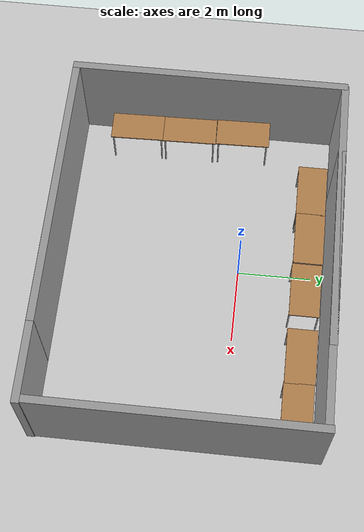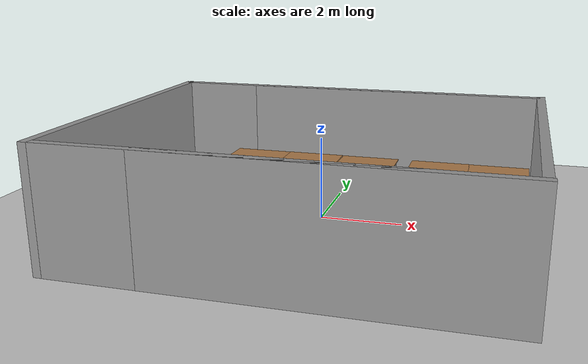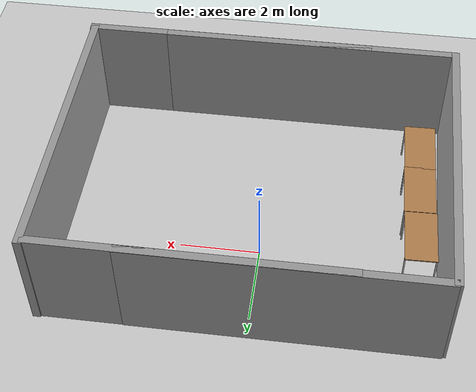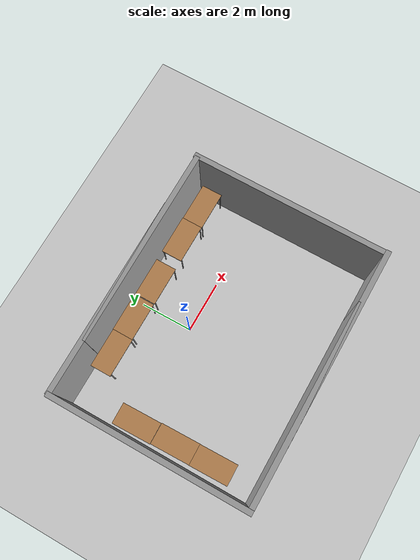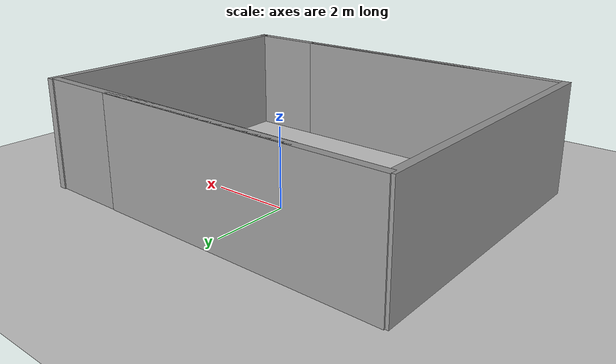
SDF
<sdf version="1.7">
 <world name="default">
  <light name="sun" type="directional">
   <pose>0 0 10 0 -0 0</pose>
   <diffuse>0.8 0.8 0.8 1</diffuse>
   <specular>0.2 0.2 0.2 1</specular>
   <attenuation>
    <range>1000</range>
    <constant>0.9</constant>
    <linear>0.01</linear>
    <quadratic>0.001</quadratic>
   </attenuation>
   <direction>-0.5 0.1 -0.9</direction>
   <spot><inner_angle>0</inner_angle><outer_angle>0</outer_angle><falloff>0</falloff></spot>
  </light>
  <model name="ground_plane">
   <static>1</static>
   <link name="link">
    <collision name="collision">
     <geometry><plane><normal>0 0 1</normal><size>100 100</size></plane></geometry>
     <surface><friction><ode><mu>100</mu><mu2>50</mu2></ode></friction></surface>
    </collision>
    <visual name="visual">
     <cast_shadows>0</cast_shadows>
     <geometry><plane><normal>0 0 1</normal><size>100 100</size></plane></geometry>
     <material>
      <script><uri>file://media/materials/scripts/gazebo.material</uri><name>Gazebo/Grey</name></script>
     </material>
    </visual>
   </link>
  </model>
  <gravity>0 0 -9.8</gravity>
  <magnetic_field>6e-06 2.3e-05 -4.2e-05</magnetic_field>
  <atmosphere type="adiabatic"/>
  <physics type="ode">
   <max_step_size>0.001</max_step_size>
   <real_time_factor>1</real_time_factor>
   <real_time_update_rate>1000</real_time_update_rate>
  </physics>
  <scene><ambient>0.4 0.4 0.4 1</ambient><background>0.7 0.7 0.7 1</background><shadows>1</shadows></scene>
  <spherical_coordinates>
   <surface_model>EARTH_WGS84</surface_model>
   <latitude_deg>0</latitude_deg>
   <longitude_deg>0</longitude_deg>
   <elevation>0</elevation>
   <heading_deg>0</heading_deg>
  </spherical_coordinates>
  <model name="grey_wall">
   <static>1</static>
   <link name="link">
    <pose>0 0 1.4 0 -0 0</pose>
    <collision name="collision"><geometry><box><size>7.5 0.2 2.8</size></box></geometry></collision>
    <visual name="visual">
     <cast_shadows>0</cast_shadows>
     <geometry><box><size>7.5 0.2 2.8</size></box></geometry>
     <material>
      <script>
       <uri>model://grey_wall/materials/scripts</uri>
       <uri>model://grey_wall/materials/textures</uri>
       <name>vrc/grey_wall</name>
      </script>
     </material>
    </visual>
   </link>
   <pose>-0.803666 2.43468 0 0 -0 0</pose>
  </model>
  <model name="grey_wall_clone">
   <static>1</static>
   <link name="link">
    <pose>0 0 1.4 0 -0 0</pose>
    <collision name="collision"><geometry><box><size>7.5 0.2 2.8</size></box></geometry></collision>
    <visual name="visual">
     <cast_shadows>0</cast_shadows>
     <geometry><box><size>7.5 0.2 2.8</size></box></geometry>
     <material>
      <script>
       <uri>model://grey_wall/materials/scripts</uri>
       <uri>model://grey_wall/materials/textures</uri>
       <name>vrc/grey_wall</name>
      </script>
     </material>
    </visual>
   </link>
   <pose>1.25591 2.42457 0 0 -0 0</pose>
  </model>
  <model name="grey_wall_clone_0">
   <static>1</static>
   <link name="link">
    <pose>0 0 1.4 0 -0 0</pose>
    <collision name="collision"><geometry><box><size>7.5 0.2 2.8</size></box></geometry></collision>
    <visual name="visual">
     <cast_shadows>0</cast_shadows>
     <geometry><box><size>7.5 0.2 2.8</size></box></geometry>
     <material>
      <script>
       <uri>model://grey_wall/materials/scripts</uri>
       <uri>model://grey_wall/materials/textures</uri>
       <name>vrc/grey_wall</name>
      </script>
     </material>
    </visual>
   </link>
   <pose>-0.679019 -4.89916 0 0 -0 0</pose>
  </model>
  <model name="grey_wall_clone_1">
   <static>1</static>
   <link name="link">
    <pose>0 0 1.4 0 -0 0</pose>
    <collision name="collision"><geometry><box><size>7.5 0.2 2.8</size></box></geometry></collision>
    <visual name="visual">
     <cast_shadows>0</cast_shadows>
     <geometry><box><size>7.5 0.2 2.8</size></box></geometry>
     <material>
      <script>
       <uri>model://grey_wall/materials/scripts</uri>
       <uri>model://grey_wall/materials/textures</uri>
       <name>vrc/grey_wall</name>
      </script>
     </material>
    </visual>
   </link>
   <pose>1.39869 -4.90164 0 0 -0 0</pose>
  </model>
  <model name="grey_wall_clone_1_clone">
   <static>1</static>
   <link name="link">
    <pose>0 0 1.4 0 -0 0</pose>
    <collision name="collision"><geometry><box><size>7.5 0.2 2.8</size></box></geometry></collision>
    <visual name="visual">
     <cast_shadows>0</cast_shadows>
     <geometry><box><size>7.5 0.2 2.8</size></box></geometry>
     <material>
      <script>
       <uri>model://grey_wall/materials/scripts</uri>
       <uri>model://grey_wall/materials/textures</uri>
       <name>vrc/grey_wall</name>
      </script>
     </material>
    </visual>
   </link>
   <pose>-4.52506 -1.24738 0 0 0 -1.57</pose>
  </model>
  <model name="grey_wall_clone_1_clone_clone">
   <static>1</static>
   <link name="link">
    <pose>0 0 1.4 0 -0 0</pose>
    <collision name="collision"><geometry><box><size>7.5 0.2 2.8</size></box></geometry></collision>
    <visual name="visual">
     <cast_shadows>0</cast_shadows>
     <geometry><box><size>7.5 0.2 2.8</size></box></geometry>
     <material>
      <script>
       <uri>model://grey_wall/materials/scripts</uri>
       <uri>model://grey_wall/materials/textures</uri>
       <name>vrc/grey_wall</name>
      </script>
     </material>
    </visual>
   </link>
   <pose>5.02252 -1.19384 0 0 0 -1.57</pose>
  </model>
  <model name="table">
   <static>1</static>
   <link name="link">
    <collision name="surface">
     <pose>0 0 1 0 -0 0</pose>
     <geometry><box><size>1.5 0.8 0.03</size></box></geometry>
     <surface><friction><ode><mu>0.6</mu><mu2>0.6</mu2></ode></friction></surface>
    </collision>
    <visual name="visual1">
     <pose>0 0 1 0 -0 0</pose>
     <geometry><box><size>1.5 0.8 0.03</size></box></geometry>
     <material>
      <script><uri>file://media/materials/scripts/gazebo.material</uri><name>Gazebo/Wood</name></script>
     </material>
    </visual>
    <collision name="front_left_leg">
     <pose>0.68 0.38 0.5 0 -0 0</pose>
     <geometry><cylinder><radius>0.02</radius><length>1</length></cylinder></geometry>
    </collision>
    <visual name="front_left_leg">
     <pose>0.68 0.38 0.5 0 -0 0</pose>
     <geometry><cylinder><radius>0.02</radius><length>1</length></cylinder></geometry>
     <material>
      <script><uri>file://media/materials/scripts/gazebo.material</uri><name>Gazebo/Grey</name></script>
     </material>
    </visual>
    <collision name="front_right_leg">
     <pose>0.68 -0.38 0.5 0 -0 0</pose>
     <geometry><cylinder><radius>0.02</radius><length>1</length></cylinder></geometry>
    </collision>
    <visual name="front_right_leg">
     <pose>0.68 -0.38 0.5 0 -0 0</pose>
     <geometry><cylinder><radius>0.02</radius><length>1</length></cylinder></geometry>
     <material>
      <script><uri>file://media/materials/scripts/gazebo.material</uri><name>Gazebo/Grey</name></script>
     </material>
    </visual>
    <collision name="back_right_leg">
     <pose>-0.68 -0.38 0.5 0 -0 0</pose>
     <geometry><cylinder><radius>0.02</radius><length>1</length></cylinder></geometry>
    </collision>
    <visual name="back_right_leg">
     <pose>-0.68 -0.38 0.5 0 -0 0</pose>
     <geometry><cylinder><radius>0.02</radius><length>1</length></cylinder></geometry>
     <material>
      <script><uri>file://media/materials/scripts/gazebo.material</uri><name>Gazebo/Grey</name></script>
     </material>
    </visual>
    <collision name="back_left_leg">
     <pose>-0.68 0.38 0.5 0 -0 0</pose>
     <geometry><cylinder><radius>0.02</radius><length>1</length></cylinder></geometry>
    </collision>
    <visual name="back_left_leg">
     <pose>-0.68 0.38 0.5 0 -0 0</pose>
     <geometry><cylinder><radius>0.02</radius><length>1</length></cylinder></geometry>
     <material>
      <script><uri>file://media/materials/scripts/gazebo.material</uri><name>Gazebo/Grey</name></script>
     </material>
    </visual>
   </link>
   <pose>4.12932 1.79946 0 0 -0 0</pose>
  </model>
  <model name="table_clone">
   <static>1</static>
   <link name="link">
    <collision name="surface">
     <pose>0 0 1 0 -0 0</pose>
     <geometry><box><size>1.5 0.8 0.03</size></box></geometry>
     <surface><friction><ode><mu>0.6</mu><mu2>0.6</mu2></ode></friction></surface>
    </collision>
    <visual name="visual1">
     <pose>0 0 1 0 -0 0</pose>
     <geometry><box><size>1.5 0.8 0.03</size></box></geometry>
     <material>
      <script><uri>file://media/materials/scripts/gazebo.material</uri><name>Gazebo/Wood</name></script>
     </material>
    </visual>
    <collision name="front_left_leg">
     <pose>0.68 0.38 0.5 0 -0 0</pose>
     <geometry><cylinder><radius>0.02</radius><length>1</length></cylinder></geometry>
    </collision>
    <visual name="front_left_leg">
     <pose>0.68 0.38 0.5 0 -0 0</pose>
     <geometry><cylinder><radius>0.02</radius><length>1</length></cylinder></geometry>
     <material>
      <script><uri>file://media/materials/scripts/gazebo.material</uri><name>Gazebo/Grey</name></script>
     </material>
    </visual>
    <collision name="front_right_leg">
     <pose>0.68 -0.38 0.5 0 -0 0</pose>
     <geometry><cylinder><radius>0.02</radius><length>1</length></cylinder></geometry>
    </collision>
    <visual name="front_right_leg">
     <pose>0.68 -0.38 0.5 0 -0 0</pose>
     <geometry><cylinder><radius>0.02</radius><length>1</length></cylinder></geometry>
     <material>
      <script><uri>file://media/materials/scripts/gazebo.material</uri><name>Gazebo/Grey</name></script>
     </material>
    </visual>
    <collision name="back_right_leg">
     <pose>-0.68 -0.38 0.5 0 -0 0</pose>
     <geometry><cylinder><radius>0.02</radius><length>1</length></cylinder></geometry>
    </collision>
    <visual name="back_right_leg">
     <pose>-0.68 -0.38 0.5 0 -0 0</pose>
     <geometry><cylinder><radius>0.02</radius><length>1</length></cylinder></geometry>
     <material>
      <script><uri>file://media/materials/scripts/gazebo.material</uri><name>Gazebo/Grey</name></script>
     </material>
    </visual>
    <collision name="back_left_leg">
     <pose>-0.68 0.38 0.5 0 -0 0</pose>
     <geometry><cylinder><radius>0.02</radius><length>1</length></cylinder></geometry>
    </collision>
    <visual name="back_left_leg">
     <pose>-0.68 0.38 0.5 0 -0 0</pose>
     <geometry><cylinder><radius>0.02</radius><length>1</length></cylinder></geometry>
     <material>
      <script><uri>file://media/materials/scripts/gazebo.material</uri><name>Gazebo/Grey</name></script>
     </material>
    </visual>
   </link>
   <pose>2.645 1.81408 0 0 -0 0</pose>
  </model>
  <model name="table_clone_0">
   <static>1</static>
   <link name="link">
    <collision name="surface">
     <pose>0 0 1 0 -0 0</pose>
     <geometry><box><size>1.5 0.8 0.03</size></box></geometry>
     <surface><friction><ode><mu>0.6</mu><mu2>0.6</mu2></ode></friction></surface>
    </collision>
    <visual name="visual1">
     <pose>0 0 1 0 -0 0</pose>
     <geometry><box><size>1.5 0.8 0.03</size></box></geometry>
     <material>
      <script><uri>file://media/materials/scripts/gazebo.material</uri><name>Gazebo/Wood</name></script>
     </material>
    </visual>
    <collision name="front_left_leg">
     <pose>0.68 0.38 0.5 0 -0 0</pose>
     <geometry><cylinder><radius>0.02</radius><length>1</length></cylinder></geometry>
    </collision>
    <visual name="front_left_leg">
     <pose>0.68 0.38 0.5 0 -0 0</pose>
     <geometry><cylinder><radius>0.02</radius><length>1</length></cylinder></geometry>
     <material>
      <script><uri>file://media/materials/scripts/gazebo.material</uri><name>Gazebo/Grey</name></script>
     </material>
    </visual>
    <collision name="front_right_leg">
     <pose>0.68 -0.38 0.5 0 -0 0</pose>
     <geometry><cylinder><radius>0.02</radius><length>1</length></cylinder></geometry>
    </collision>
    <visual name="front_right_leg">
     <pose>0.68 -0.38 0.5 0 -0 0</pose>
     <geometry><cylinder><radius>0.02</radius><length>1</length></cylinder></geometry>
     <material>
      <script><uri>file://media/materials/scripts/gazebo.material</uri><name>Gazebo/Grey</name></script>
     </material>
    </visual>
    <collision name="back_right_leg">
     <pose>-0.68 -0.38 0.5 0 -0 0</pose>
     <geometry><cylinder><radius>0.02</radius><length>1</length></cylinder></geometry>
    </collision>
    <visual name="back_right_leg">
     <pose>-0.68 -0.38 0.5 0 -0 0</pose>
     <geometry><cylinder><radius>0.02</radius><length>1</length></cylinder></geometry>
     <material>
      <script><uri>file://media/materials/scripts/gazebo.material</uri><name>Gazebo/Grey</name></script>
     </material>
    </visual>
    <collision name="back_left_leg">
     <pose>-0.68 0.38 0.5 0 -0 0</pose>
     <geometry><cylinder><radius>0.02</radius><length>1</length></cylinder></geometry>
    </collision>
    <visual name="back_left_leg">
     <pose>-0.68 0.38 0.5 0 -0 0</pose>
     <geometry><cylinder><radius>0.02</radius><length>1</length></cylinder></geometry>
     <material>
      <script><uri>file://media/materials/scripts/gazebo.material</uri><name>Gazebo/Grey</name></script>
     </material>
    </visual>
   </link>
   <pose>0.773636 1.8212 0 0 -0 0</pose>
  </model>
  <model name="table_clone_1">
   <static>1</static>
   <link name="link">
    <collision name="surface">
     <pose>0 0 1 0 -0 0</pose>
     <geometry><box><size>1.5 0.8 0.03</size></box></geometry>
     <surface><friction><ode><mu>0.6</mu><mu2>0.6</mu2></ode></friction></surface>
    </collision>
    <visual name="visual1">
     <pose>0 0 1 0 -0 0</pose>
     <geometry><box><size>1.5 0.8 0.03</size></box></geometry>
     <material>
      <script><uri>file://media/materials/scripts/gazebo.material</uri><name>Gazebo/Wood</name></script>
     </material>
    </visual>
    <collision name="front_left_leg">
     <pose>0.68 0.38 0.5 0 -0 0</pose>
     <geometry><cylinder><radius>0.02</radius><length>1</length></cylinder></geometry>
    </collision>
    <visual name="front_left_leg">
     <pose>0.68 0.38 0.5 0 -0 0</pose>
     <geometry><cylinder><radius>0.02</radius><length>1</length></cylinder></geometry>
     <material>
      <script><uri>file://media/materials/scripts/gazebo.material</uri><name>Gazebo/Grey</name></script>
     </material>
    </visual>
    <collision name="front_right_leg">
     <pose>0.68 -0.38 0.5 0 -0 0</pose>
     <geometry><cylinder><radius>0.02</radius><length>1</length></cylinder></geometry>
    </collision>
    <visual name="front_right_leg">
     <pose>0.68 -0.38 0.5 0 -0 0</pose>
     <geometry><cylinder><radius>0.02</radius><length>1</length></cylinder></geometry>
     <material>
      <script><uri>file://media/materials/scripts/gazebo.material</uri><name>Gazebo/Grey</name></script>
     </material>
    </visual>
    <collision name="back_right_leg">
     <pose>-0.68 -0.38 0.5 0 -0 0</pose>
     <geometry><cylinder><radius>0.02</radius><length>1</length></cylinder></geometry>
    </collision>
    <visual name="back_right_leg">
     <pose>-0.68 -0.38 0.5 0 -0 0</pose>
     <geometry><cylinder><radius>0.02</radius><length>1</length></cylinder></geometry>
     <material>
      <script><uri>file://media/materials/scripts/gazebo.material</uri><name>Gazebo/Grey</name></script>
     </material>
    </visual>
    <collision name="back_left_leg">
     <pose>-0.68 0.38 0.5 0 -0 0</pose>
     <geometry><cylinder><radius>0.02</radius><length>1</length></cylinder></geometry>
    </collision>
    <visual name="back_left_leg">
     <pose>-0.68 0.38 0.5 0 -0 0</pose>
     <geometry><cylinder><radius>0.02</radius><length>1</length></cylinder></geometry>
     <material>
      <script><uri>file://media/materials/scripts/gazebo.material</uri><name>Gazebo/Grey</name></script>
     </material>
    </visual>
   </link>
   <pose>-0.753682 1.83835 0 0 -0 0</pose>
  </model>
  <model name="table_clone_2">
   <static>1</static>
   <link name="link">
    <collision name="surface">
     <pose>0 0 1 0 -0 0</pose>
     <geometry><box><size>1.5 0.8 0.03</size></box></geometry>
     <surface><friction><ode><mu>0.6</mu><mu2>0.6</mu2></ode></friction></surface>
    </collision>
    <visual name="visual1">
     <pose>0 0 1 0 -0 0</pose>
     <geometry><box><size>1.5 0.8 0.03</size></box></geometry>
     <material>
      <script><uri>file://media/materials/scripts/gazebo.material</uri><name>Gazebo/Wood</name></script>
     </material>
    </visual>
    <collision name="front_left_leg">
     <pose>0.68 0.38 0.5 0 -0 0</pose>
     <geometry><cylinder><radius>0.02</radius><length>1</length></cylinder></geometry>
    </collision>
    <visual name="front_left_leg">
     <pose>0.68 0.38 0.5 0 -0 0</pose>
     <geometry><cylinder><radius>0.02</radius><length>1</length></cylinder></geometry>
     <material>
      <script><uri>file://media/materials/scripts/gazebo.material</uri><name>Gazebo/Grey</name></script>
     </material>
    </visual>
    <collision name="front_right_leg">
     <pose>0.68 -0.38 0.5 0 -0 0</pose>
     <geometry><cylinder><radius>0.02</radius><length>1</length></cylinder></geometry>
    </collision>
    <visual name="front_right_leg">
     <pose>0.68 -0.38 0.5 0 -0 0</pose>
     <geometry><cylinder><radius>0.02</radius><length>1</length></cylinder></geometry>
     <material>
      <script><uri>file://media/materials/scripts/gazebo.material</uri><name>Gazebo/Grey</name></script>
     </material>
    </visual>
    <collision name="back_right_leg">
     <pose>-0.68 -0.38 0.5 0 -0 0</pose>
     <geometry><cylinder><radius>0.02</radius><length>1</length></cylinder></geometry>
    </collision>
    <visual name="back_right_leg">
     <pose>-0.68 -0.38 0.5 0 -0 0</pose>
     <geometry><cylinder><radius>0.02</radius><length>1</length></cylinder></geometry>
     <material>
      <script><uri>file://media/materials/scripts/gazebo.material</uri><name>Gazebo/Grey</name></script>
     </material>
    </visual>
    <collision name="back_left_leg">
     <pose>-0.68 0.38 0.5 0 -0 0</pose>
     <geometry><cylinder><radius>0.02</radius><length>1</length></cylinder></geometry>
    </collision>
    <visual name="back_left_leg">
     <pose>-0.68 0.38 0.5 0 -0 0</pose>
     <geometry><cylinder><radius>0.02</radius><length>1</length></cylinder></geometry>
     <material>
      <script><uri>file://media/materials/scripts/gazebo.material</uri><name>Gazebo/Grey</name></script>
     </material>
    </visual>
   </link>
   <pose>-2.23475 1.82905 0 0 -0 0</pose>
  </model>
  <model name="table_clone_3">
   <static>1</static>
   <link name="link">
    <collision name="surface">
     <pose>0 0 1 0 -0 0</pose>
     <geometry><box><size>1.5 0.8 0.03</size></box></geometry>
     <surface><friction><ode><mu>0.6</mu><mu2>0.6</mu2></ode></friction></surface>
    </collision>
    <visual name="visual1">
     <pose>0 0 1 0 -0 0</pose>
     <geometry><box><size>1.5 0.8 0.03</size></box></geometry>
     <material>
      <script><uri>file://media/materials/scripts/gazebo.material</uri><name>Gazebo/Wood</name></script>
     </material>
    </visual>
    <collision name="front_left_leg">
     <pose>0.68 0.38 0.5 0 -0 0</pose>
     <geometry><cylinder><radius>0.02</radius><length>1</length></cylinder></geometry>
    </collision>
    <visual name="front_left_leg">
     <pose>0.68 0.38 0.5 0 -0 0</pose>
     <geometry><cylinder><radius>0.02</radius><length>1</length></cylinder></geometry>
     <material>
      <script><uri>file://media/materials/scripts/gazebo.material</uri><name>Gazebo/Grey</name></script>
     </material>
    </visual>
    <collision name="front_right_leg">
     <pose>0.68 -0.38 0.5 0 -0 0</pose>
     <geometry><cylinder><radius>0.02</radius><length>1</length></cylinder></geometry>
    </collision>
    <visual name="front_right_leg">
     <pose>0.68 -0.38 0.5 0 -0 0</pose>
     <geometry><cylinder><radius>0.02</radius><length>1</length></cylinder></geometry>
     <material>
      <script><uri>file://media/materials/scripts/gazebo.material</uri><name>Gazebo/Grey</name></script>
     </material>
    </visual>
    <collision name="back_right_leg">
     <pose>-0.68 -0.38 0.5 0 -0 0</pose>
     <geometry><cylinder><radius>0.02</radius><length>1</length></cylinder></geometry>
    </collision>
    <visual name="back_right_leg">
     <pose>-0.68 -0.38 0.5 0 -0 0</pose>
     <geometry><cylinder><radius>0.02</radius><length>1</length></cylinder></geometry>
     <material>
      <script><uri>file://media/materials/scripts/gazebo.material</uri><name>Gazebo/Grey</name></script>
     </material>
    </visual>
    <collision name="back_left_leg">
     <pose>-0.68 0.38 0.5 0 -0 0</pose>
     <geometry><cylinder><radius>0.02</radius><length>1</length></cylinder></geometry>
    </collision>
    <visual name="back_left_leg">
     <pose>-0.68 0.38 0.5 0 -0 0</pose>
     <geometry><cylinder><radius>0.02</radius><length>1</length></cylinder></geometry>
     <material>
      <script><uri>file://media/materials/scripts/gazebo.material</uri><name>Gazebo/Grey</name></script>
     </material>
    </visual>
   </link>
   <pose>-3.91491 -0.212749 0 0 0 -1.54987</pose>
  </model>
  <model name="table_clone_3_clone">
   <static>1</static>
   <link name="link">
    <collision name="surface">
     <pose>0 0 1 0 -0 0</pose>
     <geometry><box><size>1.5 0.8 0.03</size></box></geometry>
     <surface><friction><ode><mu>0.6</mu><mu2>0.6</mu2></ode></friction></surface>
    </collision>
    <visual name="visual1">
     <pose>0 0 1 0 -0 0</pose>
     <geometry><box><size>1.5 0.8 0.03</size></box></geometry>
     <material>
      <script><uri>file://media/materials/scripts/gazebo.material</uri><name>Gazebo/Wood</name></script>
     </material>
    </visual>
    <collision name="front_left_leg">
     <pose>0.68 0.38 0.5 0 -0 0</pose>
     <geometry><cylinder><radius>0.02</radius><length>1</length></cylinder></geometry>
    </collision>
    <visual name="front_left_leg">
     <pose>0.68 0.38 0.5 0 -0 0</pose>
     <geometry><cylinder><radius>0.02</radius><length>1</length></cylinder></geometry>
     <material>
      <script><uri>file://media/materials/scripts/gazebo.material</uri><name>Gazebo/Grey</name></script>
     </material>
    </visual>
    <collision name="front_right_leg">
     <pose>0.68 -0.38 0.5 0 -0 0</pose>
     <geometry><cylinder><radius>0.02</radius><length>1</length></cylinder></geometry>
    </collision>
    <visual name="front_right_leg">
     <pose>0.68 -0.38 0.5 0 -0 0</pose>
     <geometry><cylinder><radius>0.02</radius><length>1</length></cylinder></geometry>
     <material>
      <script><uri>file://media/materials/scripts/gazebo.material</uri><name>Gazebo/Grey</name></script>
     </material>
    </visual>
    <collision name="back_right_leg">
     <pose>-0.68 -0.38 0.5 0 -0 0</pose>
     <geometry><cylinder><radius>0.02</radius><length>1</length></cylinder></geometry>
    </collision>
    <visual name="back_right_leg">
     <pose>-0.68 -0.38 0.5 0 -0 0</pose>
     <geometry><cylinder><radius>0.02</radius><length>1</length></cylinder></geometry>
     <material>
      <script><uri>file://media/materials/scripts/gazebo.material</uri><name>Gazebo/Grey</name></script>
     </material>
    </visual>
    <collision name="back_left_leg">
     <pose>-0.68 0.38 0.5 0 -0 0</pose>
     <geometry><cylinder><radius>0.02</radius><length>1</length></cylinder></geometry>
    </collision>
    <visual name="back_left_leg">
     <pose>-0.68 0.38 0.5 0 -0 0</pose>
     <geometry><cylinder><radius>0.02</radius><length>1</length></cylinder></geometry>
     <material>
      <script><uri>file://media/materials/scripts/gazebo.material</uri><name>Gazebo/Grey</name></script>
     </material>
    </visual>
   </link>
   <pose>-3.86706 -1.72113 0 0 0 -1.54987</pose>
  </model>
  <model name="table_clone_3_clone_0">
   <static>1</static>
   <link name="link">
    <collision name="surface">
     <pose>0 0 1 0 -0 0</pose>
     <geometry><box><size>1.5 0.8 0.03</size></box></geometry>
     <surface><friction><ode><mu>0.6</mu><mu2>0.6</mu2></ode></friction></surface>
    </collision>
    <visual name="visual1">
     <pose>0 0 1 0 -0 0</pose>
     <geometry><box><size>1.5 0.8 0.03</size></box></geometry>
     <material>
      <script><uri>file://media/materials/scripts/gazebo.material</uri><name>Gazebo/Wood</name></script>
     </material>
    </visual>
    <collision name="front_left_leg">
     <pose>0.68 0.38 0.5 0 -0 0</pose>
     <geometry><cylinder><radius>0.02</radius><length>1</length></cylinder></geometry>
    </collision>
    <visual name="front_left_leg">
     <pose>0.68 0.38 0.5 0 -0 0</pose>
     <geometry><cylinder><radius>0.02</radius><length>1</length></cylinder></geometry>
     <material>
      <script><uri>file://media/materials/scripts/gazebo.material</uri><name>Gazebo/Grey</name></script>
     </material>
    </visual>
    <collision name="front_right_leg">
     <pose>0.68 -0.38 0.5 0 -0 0</pose>
     <geometry><cylinder><radius>0.02</radius><length>1</length></cylinder></geometry>
    </collision>
    <visual name="front_right_leg">
     <pose>0.68 -0.38 0.5 0 -0 0</pose>
     <geometry><cylinder><radius>0.02</radius><length>1</length></cylinder></geometry>
     <material>
      <script><uri>file://media/materials/scripts/gazebo.material</uri><name>Gazebo/Grey</name></script>
     </material>
    </visual>
    <collision name="back_right_leg">
     <pose>-0.68 -0.38 0.5 0 -0 0</pose>
     <geometry><cylinder><radius>0.02</radius><length>1</length></cylinder></geometry>
    </collision>
    <visual name="back_right_leg">
     <pose>-0.68 -0.38 0.5 0 -0 0</pose>
     <geometry><cylinder><radius>0.02</radius><length>1</length></cylinder></geometry>
     <material>
      <script><uri>file://media/materials/scripts/gazebo.material</uri><name>Gazebo/Grey</name></script>
     </material>
    </visual>
    <collision name="back_left_leg">
     <pose>-0.68 0.38 0.5 0 -0 0</pose>
     <geometry><cylinder><radius>0.02</radius><length>1</length></cylinder></geometry>
    </collision>
    <visual name="back_left_leg">
     <pose>-0.68 0.38 0.5 0 -0 0</pose>
     <geometry><cylinder><radius>0.02</radius><length>1</length></cylinder></geometry>
     <material>
      <script><uri>file://media/materials/scripts/gazebo.material</uri><name>Gazebo/Grey</name></script>
     </material>
    </visual>
   </link>
   <pose>-3.84243 -3.19333 0 0 0 -1.54987</pose>
  </model>
 </world>
</sdf>
